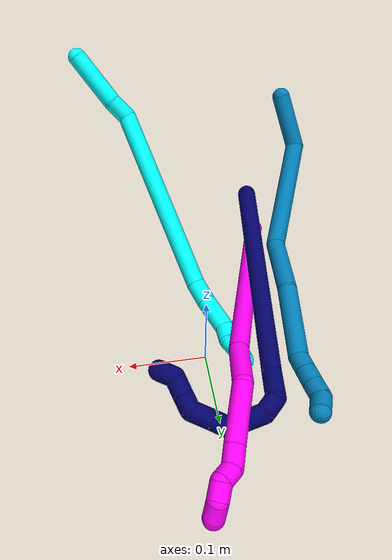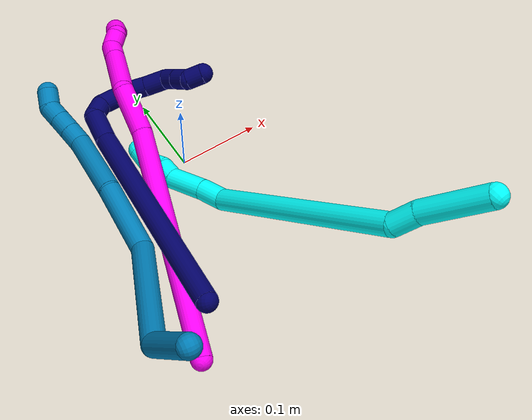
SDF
<sdf version="1.7">
 <world name="default">
  <model name="3">
   <static>0</static>
   <link name="3">
    <collision name="collision-cylinder-e_1_1_4">
     <pose>-0.009024 0.029977 -0.022541 -2.21555 -0.236115 0.466527</pose>
     <geometry><cylinder><radius>0.0125</radius><length>0.077154</length></cylinder></geometry>
     <surface>
      <friction><ode><mu>1.16</mu><mu2>1.16</mu2><slip1>0</slip1><slip2>0</slip2></ode></friction>
      <contact><ode><kp>1e+06</kp><kd>1</kd><max_vel>0</max_vel><min_depth>0.001</min_depth></ode></contact>
     </surface>
    </collision>
    <visual name="visual-cylinder-e_1_1_4">
     <pose>-0.009024 0.029977 -0.022541 -2.21555 -0.236115 0.466527</pose>
     <geometry><cylinder><radius>0.0125</radius><length>0.077154</length></cylinder></geometry>
     <material><ambient>0.003922 1 0.996078 1</ambient></material>
    </visual>
    <collision name="collision-cylinder-e_2_4_5">
     <pose>-0.020684 0.073328 -0.051257 -2.00331 -0.177026 0.275671</pose>
     <geometry><cylinder><radius>0.0125</radius><length>0.029928</length></cylinder></geometry>
     <surface>
      <friction><ode><mu>1.16</mu><mu2>1.16</mu2><slip1>0</slip1><slip2>0</slip2></ode></friction>
      <contact><ode><kp>1e+06</kp><kd>1</kd><max_vel>0</max_vel><min_depth>0.001</min_depth></ode></contact>
     </surface>
    </collision>
    <visual name="visual-cylinder-e_2_4_5">
     <pose>-0.020684 0.073328 -0.051257 -2.00331 -0.177026 0.275671</pose>
     <geometry><cylinder><radius>0.0125</radius><length>0.029928</length></cylinder></geometry>
     <material><ambient>0.003922 1 0.996078 1</ambient></material>
    </visual>
    <collision name="collision-cylinder-e_3_5_6">
     <pose>-0.074575 0.154501 -0.153509 -2.52707 -0.411057 1.16256</pose>
     <geometry><cylinder><radius>0.0125</radius><length>0.256552</length></cylinder></geometry>
     <surface>
      <friction><ode><mu>1.16</mu><mu2>1.16</mu2><slip1>0</slip1><slip2>0</slip2></ode></friction>
      <contact><ode><kp>1e+06</kp><kd>1</kd><max_vel>0</max_vel><min_depth>0.001</min_depth></ode></contact>
     </surface>
    </collision>
    <visual name="visual-cylinder-e_3_5_6">
     <pose>-0.074575 0.154501 -0.153509 -2.52707 -0.411057 1.16256</pose>
     <geometry><cylinder><radius>0.0125</radius><length>0.256552</length></cylinder></geometry>
     <material><ambient>0.003922 1 0.996078 1</ambient></material>
    </visual>
    <collision name="collision-cylinder-e_4_6_7">
     <pose>-0.127441 0.227473 -0.264058 -2.79826 -0.104329 0.585034</pose>
     <geometry><cylinder><radius>0.0125</radius><length>0.030905</length></cylinder></geometry>
     <surface>
      <friction><ode><mu>1.16</mu><mu2>1.16</mu2><slip1>0</slip1><slip2>0</slip2></ode></friction>
      <contact><ode><kp>1e+06</kp><kd>1</kd><max_vel>0</max_vel><min_depth>0.001</min_depth></ode></contact>
     </surface>
    </collision>
    <visual name="visual-cylinder-e_4_6_7">
     <pose>-0.127441 0.227473 -0.264058 -2.79826 -0.104329 0.585034</pose>
     <geometry><cylinder><radius>0.0125</radius><length>0.030905</length></cylinder></geometry>
     <material><ambient>0.003922 1 0.996078 1</ambient></material>
    </visual>
    <collision name="collision-cylinder-e_5_7_8">
     <pose>-0.130456 0.241775 -0.298811 -2.71868 -0.063111 0.292003</pose>
     <geometry><cylinder><radius>0.0125</radius><length>0.044572</length></cylinder></geometry>
     <surface>
      <friction><ode><mu>1.16</mu><mu2>1.16</mu2><slip1>0</slip1><slip2>0</slip2></ode></friction>
      <contact><ode><kp>1e+06</kp><kd>1</kd><max_vel>0</max_vel><min_depth>0.001</min_depth></ode></contact>
     </surface>
    </collision>
    <visual name="visual-cylinder-e_5_7_8">
     <pose>-0.130456 0.241775 -0.298811 -2.71868 -0.063111 0.292003</pose>
     <geometry><cylinder><radius>0.0125</radius><length>0.044572</length></cylinder></geometry>
     <material><ambient>0.003922 1 0.996078 1</ambient></material>
    </visual>
    <collision name="collision-cylinder-e_6_8_9">
     <pose>-0.133356 0.251266 -0.329406 -3.10642 -0.143837 2.66273</pose>
     <geometry><cylinder><radius>0.0125</radius><length>0.020854</length></cylinder></geometry>
     <surface>
      <friction><ode><mu>1.16</mu><mu2>1.16</mu2><slip1>0</slip1><slip2>0</slip2></ode></friction>
      <contact><ode><kp>1e+06</kp><kd>1</kd><max_vel>0</max_vel><min_depth>0.001</min_depth></ode></contact>
     </surface>
    </collision>
    <visual name="visual-cylinder-e_6_8_9">
     <pose>-0.133356 0.251266 -0.329406 -3.10642 -0.143837 2.66273</pose>
     <geometry><cylinder><radius>0.0125</radius><length>0.020854</length></cylinder></geometry>
     <material><ambient>0.003922 1 0.996078 1</ambient></material>
    </visual>
    <collision name="collision-cylinder-e_7_9_10">
     <pose>-0.13404 0.255918 -0.348727 -2.69724 0.08103 -0.355104</pose>
     <geometry><cylinder><radius>0.0125</radius><length>0.02002</length></cylinder></geometry>
     <surface>
      <friction><ode><mu>1.16</mu><mu2>1.16</mu2><slip1>0</slip1><slip2>0</slip2></ode></friction>
      <contact><ode><kp>1e+06</kp><kd>1</kd><max_vel>0</max_vel><min_depth>0.001</min_depth></ode></contact>
     </surface>
    </collision>
    <visual name="visual-cylinder-e_7_9_10">
     <pose>-0.13404 0.255918 -0.348727 -2.69724 0.08103 -0.355104</pose>
     <geometry><cylinder><radius>0.0125</radius><length>0.02002</length></cylinder></geometry>
     <material><ambient>0.003922 1 0.996078 1</ambient></material>
    </visual>
    <collision name="collision-cylinder-e_8_10_2">
     <pose>-0.131911 0.258833 -0.36756 3.00263 0.132206 1.52084</pose>
     <geometry><cylinder><radius>0.0125</radius><length>0.020015</length></cylinder></geometry>
     <surface>
      <friction><ode><mu>1.16</mu><mu2>1.16</mu2><slip1>0</slip1><slip2>0</slip2></ode></friction>
      <contact><ode><kp>1e+06</kp><kd>1</kd><max_vel>0</max_vel><min_depth>0.001</min_depth></ode></contact>
     </surface>
    </collision>
    <visual name="visual-cylinder-e_8_10_2">
     <pose>-0.131911 0.258833 -0.36756 3.00263 0.132206 1.52084</pose>
     <geometry><cylinder><radius>0.0125</radius><length>0.020015</length></cylinder></geometry>
     <material><ambient>0.003922 1 0.996078 1</ambient></material>
    </visual>
    <collision name="collision-sphere-2">
     <pose>-0.130592 0.257458 -0.377384 0 -0 0</pose>
     <geometry><sphere><radius>0.0125</radius></sphere></geometry>
     <surface>
      <friction><ode><mu>1.16</mu><mu2>1.16</mu2><slip1>0</slip1><slip2>0</slip2></ode></friction>
      <contact><ode><kp>1e+06</kp><kd>1</kd><max_vel>0</max_vel><min_depth>0.001</min_depth></ode></contact>
     </surface>
    </collision>
    <visual name="visual-sphere-2">
     <pose>-0.130592 0.257458 -0.377384 0 -0 0</pose>
     <geometry><sphere><radius>0.0125</radius></sphere></geometry>
     <material><ambient>0.003922 1 0.996078 1</ambient></material>
    </visual>
    <collision name="collision-sphere-10">
     <pose>-0.13323 0.260207 -0.357735 0 -0 0</pose>
     <geometry><sphere><radius>0.0125</radius></sphere></geometry>
     <surface>
      <friction><ode><mu>1.16</mu><mu2>1.16</mu2><slip1>0</slip1><slip2>0</slip2></ode></friction>
      <contact><ode><kp>1e+06</kp><kd>1</kd><max_vel>0</max_vel><min_depth>0.001</min_depth></ode></contact>
     </surface>
    </collision>
    <visual name="visual-sphere-10">
     <pose>-0.13323 0.260207 -0.357735 0 -0 0</pose>
     <geometry><sphere><radius>0.0125</radius></sphere></geometry>
     <material><ambient>0.003922 1 0.996078 1</ambient></material>
    </visual>
    <collision name="collision-sphere-9">
     <pose>-0.13485 0.251629 -0.339719 0 -0 0</pose>
     <geometry><sphere><radius>0.0125</radius></sphere></geometry>
     <surface>
      <friction><ode><mu>1.16</mu><mu2>1.16</mu2><slip1>0</slip1><slip2>0</slip2></ode></friction>
      <contact><ode><kp>1e+06</kp><kd>1</kd><max_vel>0</max_vel><min_depth>0.001</min_depth></ode></contact>
     </surface>
    </collision>
    <visual name="visual-sphere-9">
     <pose>-0.13485 0.251629 -0.339719 0 -0 0</pose>
     <geometry><sphere><radius>0.0125</radius></sphere></geometry>
     <material><ambient>0.003922 1 0.996078 1</ambient></material>
    </visual>
    <collision name="collision-sphere-4">
     <pose>-0.018048 0.059954 -0.045083 0 -0 0</pose>
     <geometry><sphere><radius>0.0125</radius></sphere></geometry>
     <surface>
      <friction><ode><mu>1.16</mu><mu2>1.16</mu2><slip1>0</slip1><slip2>0</slip2></ode></friction>
      <contact><ode><kp>1e+06</kp><kd>1</kd><max_vel>0</max_vel><min_depth>0.001</min_depth></ode></contact>
     </surface>
    </collision>
    <visual name="visual-sphere-4">
     <pose>-0.018048 0.059954 -0.045083 0 -0 0</pose>
     <geometry><sphere><radius>0.0125</radius></sphere></geometry>
     <material><ambient>0.003922 1 0.996078 1</ambient></material>
    </visual>
    <collision name="collision-sphere-1">
     <geometry><sphere><radius>0.0125</radius></sphere></geometry>
     <surface>
      <friction><ode><mu>1.16</mu><mu2>1.16</mu2><slip1>0</slip1><slip2>0</slip2></ode></friction>
      <contact><ode><kp>1e+06</kp><kd>1</kd><max_vel>0</max_vel><min_depth>0.001</min_depth></ode></contact>
     </surface>
    </collision>
    <visual name="visual-sphere-1">
     <geometry><sphere><radius>0.0125</radius></sphere></geometry>
     <material><ambient>0.003922 1 0.996078 1</ambient></material>
    </visual>
    <collision name="collision-sphere-8">
     <pose>-0.131861 0.250903 -0.319093 0 -0 0</pose>
     <geometry><sphere><radius>0.0125</radius></sphere></geometry>
     <surface>
      <friction><ode><mu>1.16</mu><mu2>1.16</mu2><slip1>0</slip1><slip2>0</slip2></ode></friction>
      <contact><ode><kp>1e+06</kp><kd>1</kd><max_vel>0</max_vel><min_depth>0.001</min_depth></ode></contact>
     </surface>
    </collision>
    <visual name="visual-sphere-8">
     <pose>-0.131861 0.250903 -0.319093 0 -0 0</pose>
     <geometry><sphere><radius>0.0125</radius></sphere></geometry>
     <material><ambient>0.003922 1 0.996078 1</ambient></material>
    </visual>
    <collision name="collision-sphere-5">
     <pose>-0.023319 0.086702 -0.057431 0 -0 0</pose>
     <geometry><sphere><radius>0.0125</radius></sphere></geometry>
     <surface>
      <friction><ode><mu>1.16</mu><mu2>1.16</mu2><slip1>0</slip1><slip2>0</slip2></ode></friction>
      <contact><ode><kp>1e+06</kp><kd>1</kd><max_vel>0</max_vel><min_depth>0.001</min_depth></ode></contact>
     </surface>
    </collision>
    <visual name="visual-sphere-5">
     <pose>-0.023319 0.086702 -0.057431 0 -0 0</pose>
     <geometry><sphere><radius>0.0125</radius></sphere></geometry>
     <material><ambient>0.003922 1 0.996078 1</ambient></material>
    </visual>
    <collision name="collision-sphere-6">
     <pose>-0.125832 0.2223 -0.249586 0 -0 0</pose>
     <geometry><sphere><radius>0.0125</radius></sphere></geometry>
     <surface>
      <friction><ode><mu>1.16</mu><mu2>1.16</mu2><slip1>0</slip1><slip2>0</slip2></ode></friction>
      <contact><ode><kp>1e+06</kp><kd>1</kd><max_vel>0</max_vel><min_depth>0.001</min_depth></ode></contact>
     </surface>
    </collision>
    <visual name="visual-sphere-6">
     <pose>-0.125832 0.2223 -0.249586 0 -0 0</pose>
     <geometry><sphere><radius>0.0125</radius></sphere></geometry>
     <material><ambient>0.003922 1 0.996078 1</ambient></material>
    </visual>
    <collision name="collision-sphere-7">
     <pose>-0.12905 0.232647 -0.278529 0 -0 0</pose>
     <geometry><sphere><radius>0.0125</radius></sphere></geometry>
     <surface>
      <friction><ode><mu>1.16</mu><mu2>1.16</mu2><slip1>0</slip1><slip2>0</slip2></ode></friction>
      <contact><ode><kp>1e+06</kp><kd>1</kd><max_vel>0</max_vel><min_depth>0.001</min_depth></ode></contact>
     </surface>
    </collision>
    <visual name="visual-sphere-7">
     <pose>-0.12905 0.232647 -0.278529 0 -0 0</pose>
     <geometry><sphere><radius>0.0125</radius></sphere></geometry>
     <material><ambient>0.003922 1 0.996078 1</ambient></material>
    </visual>
    <inertial>
     <pose>-0.076611 0.15499 -0.170686 0 -0 0</pose>
     <mass>0.5</mass>
     <inertia>
      <ixx>0.001774</ixx>
      <ixy>0</ixy>
      <ixz>0</ixz>
      <iyy>0.001047</iyy>
      <iyz>0</iyz>
      <izz>-0.000242</izz>
     </inertia>
    </inertial>
   </link>
   <pose>0.12632 -0.338661 0.269359 -1.64197 -0.896697 -2.95557</pose>
  </model>
  <model name="7">
   <static>0</static>
   <link name="7">
    <collision name="collision-cylinder-e_1_1_4">
     <pose>0.059594 0.075872 -0.103611 -2.50953 0.434481 -1.18752</pose>
     <geometry><cylinder><radius>0.0125</radius><length>0.283148</length></cylinder></geometry>
     <surface>
      <friction><ode><mu>1.16</mu><mu2>1.16</mu2><slip1>0</slip1><slip2>0</slip2></ode></friction>
      <contact><ode><kp>1e+06</kp><kd>1</kd><max_vel>0</max_vel><min_depth>0.001</min_depth></ode></contact>
     </surface>
    </collision>
    <visual name="visual-cylinder-e_1_1_4">
     <pose>0.059594 0.075872 -0.103611 -2.50953 0.434481 -1.18752</pose>
     <geometry><cylinder><radius>0.0125</radius><length>0.283148</length></cylinder></geometry>
     <material><ambient>0.003922 0 0.403922 1</ambient></material>
    </visual>
    <collision name="collision-cylinder-e_2_4_5">
     <pose>0.125773 0.166264 -0.218181 -2.21736 0.347314 -0.677255</pose>
     <geometry><cylinder><radius>0.0125</radius><length>0.038694</length></cylinder></geometry>
     <surface>
      <friction><ode><mu>1.16</mu><mu2>1.16</mu2><slip1>0</slip1><slip2>0</slip2></ode></friction>
      <contact><ode><kp>1e+06</kp><kd>1</kd><max_vel>0</max_vel><min_depth>0.001</min_depth></ode></contact>
     </surface>
    </collision>
    <visual name="visual-cylinder-e_2_4_5">
     <pose>0.125773 0.166264 -0.218181 -2.21736 0.347314 -0.677255</pose>
     <geometry><cylinder><radius>0.0125</radius><length>0.038694</length></cylinder></geometry>
     <material><ambient>0.003922 0 0.403922 1</ambient></material>
    </visual>
    <collision name="collision-cylinder-e_3_5_6">
     <pose>0.142628 0.184984 -0.231877 -2.14836 1.11673 -1.71244</pose>
     <geometry><cylinder><radius>0.0125</radius><length>0.022855</length></cylinder></geometry>
     <surface>
      <friction><ode><mu>1.16</mu><mu2>1.16</mu2><slip1>0</slip1><slip2>0</slip2></ode></friction>
      <contact><ode><kp>1e+06</kp><kd>1</kd><max_vel>0</max_vel><min_depth>0.001</min_depth></ode></contact>
     </surface>
    </collision>
    <visual name="visual-cylinder-e_3_5_6">
     <pose>0.142628 0.184984 -0.231877 -2.14836 1.11673 -1.71244</pose>
     <geometry><cylinder><radius>0.0125</radius><length>0.022855</length></cylinder></geometry>
     <material><ambient>0.003922 0 0.403922 1</ambient></material>
    </visual>
    <collision name="collision-cylinder-e_4_6_7">
     <pose>0.174789 0.19097 -0.229047 -0.310661 1.3098 -0.239364</pose>
     <geometry><cylinder><radius>0.0125</radius><length>0.045316</length></cylinder></geometry>
     <surface>
      <friction><ode><mu>1.16</mu><mu2>1.16</mu2><slip1>0</slip1><slip2>0</slip2></ode></friction>
      <contact><ode><kp>1e+06</kp><kd>1</kd><max_vel>0</max_vel><min_depth>0.001</min_depth></ode></contact>
     </surface>
    </collision>
    <visual name="visual-cylinder-e_4_6_7">
     <pose>0.174789 0.19097 -0.229047 -0.310661 1.3098 -0.239364</pose>
     <geometry><cylinder><radius>0.0125</radius><length>0.045316</length></cylinder></geometry>
     <material><ambient>0.003922 0 0.403922 1</ambient></material>
    </visual>
    <collision name="collision-cylinder-e_5_7_8">
     <pose>0.202248 0.192857 -0.214316 -0.010879 0.546022 -0.003046</pose>
     <geometry><cylinder><radius>0.0125</radius><length>0.021447</length></cylinder></geometry>
     <surface>
      <friction><ode><mu>1.16</mu><mu2>1.16</mu2><slip1>0</slip1><slip2>0</slip2></ode></friction>
      <contact><ode><kp>1e+06</kp><kd>1</kd><max_vel>0</max_vel><min_depth>0.001</min_depth></ode></contact>
     </surface>
    </collision>
    <visual name="visual-cylinder-e_5_7_8">
     <pose>0.202248 0.192857 -0.214316 -0.010879 0.546022 -0.003046</pose>
     <geometry><cylinder><radius>0.0125</radius><length>0.021447</length></cylinder></geometry>
     <material><ambient>0.003922 0 0.403922 1</ambient></material>
    </visual>
    <collision name="collision-cylinder-e_6_8_9">
     <pose>0.214851 0.193824 -0.193864 -0.076654 0.555953 -0.021884</pose>
     <geometry><cylinder><radius>0.0125</radius><length>0.026657</length></cylinder></geometry>
     <surface>
      <friction><ode><mu>1.16</mu><mu2>1.16</mu2><slip1>0</slip1><slip2>0</slip2></ode></friction>
      <contact><ode><kp>1e+06</kp><kd>1</kd><max_vel>0</max_vel><min_depth>0.001</min_depth></ode></contact>
     </surface>
    </collision>
    <visual name="visual-cylinder-e_6_8_9">
     <pose>0.214851 0.193824 -0.193864 -0.076654 0.555953 -0.021884</pose>
     <geometry><cylinder><radius>0.0125</radius><length>0.026657</length></cylinder></geometry>
     <material><ambient>0.003922 0 0.403922 1</ambient></material>
    </visual>
    <collision name="collision-cylinder-e_7_9_10">
     <pose>0.220474 0.193655 -0.172241 0.099901 -0.134983 -0.006758</pose>
     <geometry><cylinder><radius>0.0125</radius><length>0.020965</length></cylinder></geometry>
     <surface>
      <friction><ode><mu>1.16</mu><mu2>1.16</mu2><slip1>0</slip1><slip2>0</slip2></ode></friction>
      <contact><ode><kp>1e+06</kp><kd>1</kd><max_vel>0</max_vel><min_depth>0.001</min_depth></ode></contact>
     </surface>
    </collision>
    <visual name="visual-cylinder-e_7_9_10">
     <pose>0.220474 0.193655 -0.172241 0.099901 -0.134983 -0.006758</pose>
     <geometry><cylinder><radius>0.0125</radius><length>0.020965</length></cylinder></geometry>
     <material><ambient>0.003922 0 0.403922 1</ambient></material>
    </visual>
    <collision name="collision-cylinder-e_8_10_11">
     <pose>0.217504 0.191292 -0.151651 0.128676 -0.149675 -0.009661</pose>
     <geometry><cylinder><radius>0.0125</radius><length>0.020915</length></cylinder></geometry>
     <surface>
      <friction><ode><mu>1.16</mu><mu2>1.16</mu2><slip1>0</slip1><slip2>0</slip2></ode></friction>
      <contact><ode><kp>1e+06</kp><kd>1</kd><max_vel>0</max_vel><min_depth>0.001</min_depth></ode></contact>
     </surface>
    </collision>
    <visual name="visual-cylinder-e_8_10_11">
     <pose>0.217504 0.191292 -0.151651 0.128676 -0.149675 -0.009661</pose>
     <geometry><cylinder><radius>0.0125</radius><length>0.020915</length></cylinder></geometry>
     <material><ambient>0.003922 0 0.403922 1</ambient></material>
    </visual>
    <collision name="collision-cylinder-e_9_11_2">
     <pose>0.221252 0.191031 -0.132986 -0.126106 0.559364 -0.036263</pose>
     <geometry><cylinder><radius>0.0125</radius><length>0.020003</length></cylinder></geometry>
     <surface>
      <friction><ode><mu>1.16</mu><mu2>1.16</mu2><slip1>0</slip1><slip2>0</slip2></ode></friction>
      <contact><ode><kp>1e+06</kp><kd>1</kd><max_vel>0</max_vel><min_depth>0.001</min_depth></ode></contact>
     </surface>
    </collision>
    <visual name="visual-cylinder-e_9_11_2">
     <pose>0.221252 0.191031 -0.132986 -0.126106 0.559364 -0.036263</pose>
     <geometry><cylinder><radius>0.0125</radius><length>0.020003</length></cylinder></geometry>
     <material><ambient>0.003922 0 0.403922 1</ambient></material>
    </visual>
    <collision name="collision-sphere-2">
     <pose>0.226559 0.192097 -0.124576 0 -0 0</pose>
     <geometry><sphere><radius>0.0125</radius></sphere></geometry>
     <surface>
      <friction><ode><mu>1.16</mu><mu2>1.16</mu2><slip1>0</slip1><slip2>0</slip2></ode></friction>
      <contact><ode><kp>1e+06</kp><kd>1</kd><max_vel>0</max_vel><min_depth>0.001</min_depth></ode></contact>
     </surface>
    </collision>
    <visual name="visual-sphere-2">
     <pose>0.226559 0.192097 -0.124576 0 -0 0</pose>
     <geometry><sphere><radius>0.0125</radius></sphere></geometry>
     <material><ambient>0.003922 0 0.403922 1</ambient></material>
    </visual>
    <collision name="collision-sphere-11">
     <pose>0.215945 0.189965 -0.141396 0 -0 0</pose>
     <geometry><sphere><radius>0.0125</radius></sphere></geometry>
     <surface>
      <friction><ode><mu>1.16</mu><mu2>1.16</mu2><slip1>0</slip1><slip2>0</slip2></ode></friction>
      <contact><ode><kp>1e+06</kp><kd>1</kd><max_vel>0</max_vel><min_depth>0.001</min_depth></ode></contact>
     </surface>
    </collision>
    <visual name="visual-sphere-11">
     <pose>0.215945 0.189965 -0.141396 0 -0 0</pose>
     <geometry><sphere><radius>0.0125</radius></sphere></geometry>
     <material><ambient>0.003922 0 0.403922 1</ambient></material>
    </visual>
    <collision name="collision-sphere-10">
     <pose>0.219063 0.192619 -0.161906 0 -0 0</pose>
     <geometry><sphere><radius>0.0125</radius></sphere></geometry>
     <surface>
      <friction><ode><mu>1.16</mu><mu2>1.16</mu2><slip1>0</slip1><slip2>0</slip2></ode></friction>
      <contact><ode><kp>1e+06</kp><kd>1</kd><max_vel>0</max_vel><min_depth>0.001</min_depth></ode></contact>
     </surface>
    </collision>
    <visual name="visual-sphere-10">
     <pose>0.219063 0.192619 -0.161906 0 -0 0</pose>
     <geometry><sphere><radius>0.0125</radius></sphere></geometry>
     <material><ambient>0.003922 0 0.403922 1</ambient></material>
    </visual>
    <collision name="collision-sphere-9">
     <pose>0.221885 0.194691 -0.182576 0 -0 0</pose>
     <geometry><sphere><radius>0.0125</radius></sphere></geometry>
     <surface>
      <friction><ode><mu>1.16</mu><mu2>1.16</mu2><slip1>0</slip1><slip2>0</slip2></ode></friction>
      <contact><ode><kp>1e+06</kp><kd>1</kd><max_vel>0</max_vel><min_depth>0.001</min_depth></ode></contact>
     </surface>
    </collision>
    <visual name="visual-sphere-9">
     <pose>0.221885 0.194691 -0.182576 0 -0 0</pose>
     <geometry><sphere><radius>0.0125</radius></sphere></geometry>
     <material><ambient>0.003922 0 0.403922 1</ambient></material>
    </visual>
    <collision name="collision-sphere-4">
     <pose>0.119188 0.151744 -0.207221 0 -0 0</pose>
     <geometry><sphere><radius>0.0125</radius></sphere></geometry>
     <surface>
      <friction><ode><mu>1.16</mu><mu2>1.16</mu2><slip1>0</slip1><slip2>0</slip2></ode></friction>
      <contact><ode><kp>1e+06</kp><kd>1</kd><max_vel>0</max_vel><min_depth>0.001</min_depth></ode></contact>
     </surface>
    </collision>
    <visual name="visual-sphere-4">
     <pose>0.119188 0.151744 -0.207221 0 -0 0</pose>
     <geometry><sphere><radius>0.0125</radius></sphere></geometry>
     <material><ambient>0.003922 0 0.403922 1</ambient></material>
    </visual>
    <collision name="collision-sphere-1">
     <geometry><sphere><radius>0.0125</radius></sphere></geometry>
     <surface>
      <friction><ode><mu>1.16</mu><mu2>1.16</mu2><slip1>0</slip1><slip2>0</slip2></ode></friction>
      <contact><ode><kp>1e+06</kp><kd>1</kd><max_vel>0</max_vel><min_depth>0.001</min_depth></ode></contact>
     </surface>
    </collision>
    <visual name="visual-sphere-1">
     <geometry><sphere><radius>0.0125</radius></sphere></geometry>
     <material><ambient>0.003922 0 0.403922 1</ambient></material>
    </visual>
    <collision name="collision-sphere-8">
     <pose>0.207816 0.192957 -0.205152 0 -0 0</pose>
     <geometry><sphere><radius>0.0125</radius></sphere></geometry>
     <surface>
      <friction><ode><mu>1.16</mu><mu2>1.16</mu2><slip1>0</slip1><slip2>0</slip2></ode></friction>
      <contact><ode><kp>1e+06</kp><kd>1</kd><max_vel>0</max_vel><min_depth>0.001</min_depth></ode></contact>
     </surface>
    </collision>
    <visual name="visual-sphere-8">
     <pose>0.207816 0.192957 -0.205152 0 -0 0</pose>
     <geometry><sphere><radius>0.0125</radius></sphere></geometry>
     <material><ambient>0.003922 0 0.403922 1</ambient></material>
    </visual>
    <collision name="collision-sphere-5">
     <pose>0.132359 0.180784 -0.22914 0 -0 0</pose>
     <geometry><sphere><radius>0.0125</radius></sphere></geometry>
     <surface>
      <friction><ode><mu>1.16</mu><mu2>1.16</mu2><slip1>0</slip1><slip2>0</slip2></ode></friction>
      <contact><ode><kp>1e+06</kp><kd>1</kd><max_vel>0</max_vel><min_depth>0.001</min_depth></ode></contact>
     </surface>
    </collision>
    <visual name="visual-sphere-5">
     <pose>0.132359 0.180784 -0.22914 0 -0 0</pose>
     <geometry><sphere><radius>0.0125</radius></sphere></geometry>
     <material><ambient>0.003922 0 0.403922 1</ambient></material>
    </visual>
    <collision name="collision-sphere-6">
     <pose>0.152898 0.189183 -0.234614 0 -0 0</pose>
     <geometry><sphere><radius>0.0125</radius></sphere></geometry>
     <surface>
      <friction><ode><mu>1.16</mu><mu2>1.16</mu2><slip1>0</slip1><slip2>0</slip2></ode></friction>
      <contact><ode><kp>1e+06</kp><kd>1</kd><max_vel>0</max_vel><min_depth>0.001</min_depth></ode></contact>
     </surface>
    </collision>
    <visual name="visual-sphere-6">
     <pose>0.152898 0.189183 -0.234614 0 -0 0</pose>
     <geometry><sphere><radius>0.0125</radius></sphere></geometry>
     <material><ambient>0.003922 0 0.403922 1</ambient></material>
    </visual>
    <collision name="collision-sphere-7">
     <pose>0.196679 0.192758 -0.22348 0 -0 0</pose>
     <geometry><sphere><radius>0.0125</radius></sphere></geometry>
     <surface>
      <friction><ode><mu>1.16</mu><mu2>1.16</mu2><slip1>0</slip1><slip2>0</slip2></ode></friction>
      <contact><ode><kp>1e+06</kp><kd>1</kd><max_vel>0</max_vel><min_depth>0.001</min_depth></ode></contact>
     </surface>
    </collision>
    <visual name="visual-sphere-7">
     <pose>0.196679 0.192758 -0.22348 0 -0 0</pose>
     <geometry><sphere><radius>0.0125</radius></sphere></geometry>
     <material><ambient>0.003922 0 0.403922 1</ambient></material>
    </visual>
    <inertial>
     <pose>0.113166 0.123967 -0.145331 0 -0 0</pose>
     <mass>0.5</mass>
     <inertia>
      <ixx>-0.000928</ixx>
      <ixy>0</ixy>
      <ixz>0</ixz>
      <iyy>-0.001708</iyy>
      <iyz>0</iyz>
      <izz>-0.001852</izz>
     </inertia>
    </inertial>
   </link>
   <pose>-0.097538 -0.214564 0.09674 0.863655 0.41702 0.280514</pose>
  </model>
  <model name="9">
   <static>0</static>
   <link name="9">
    <collision name="collision-cylinder-e_1_1_4">
     <pose>-0.008251 0.034835 0.00984 -1.2955 -0.224125 0.169889</pose>
     <geometry><cylinder><radius>0.0125</radius><length>0.074252</length></cylinder></geometry>
     <surface>
      <friction><ode><mu>1.16</mu><mu2>1.16</mu2><slip1>0</slip1><slip2>0</slip2></ode></friction>
      <contact><ode><kp>1e+06</kp><kd>1</kd><max_vel>0</max_vel><min_depth>0.001</min_depth></ode></contact>
     </surface>
    </collision>
    <visual name="visual-cylinder-e_1_1_4">
     <pose>-0.008251 0.034835 0.00984 -1.2955 -0.224125 0.169889</pose>
     <geometry><cylinder><radius>0.0125</radius><length>0.074252</length></cylinder></geometry>
     <material><ambient>0 0.490196 0.709804 1</ambient></material>
    </visual>
    <collision name="collision-cylinder-e_2_4_5">
     <pose>0.003209 0.144409 -0.000865 -1.83905 0.249027 -0.32551</pose>
     <geometry><cylinder><radius>0.0125</radius><length>0.159959</length></cylinder></geometry>
     <surface>
      <friction><ode><mu>1.16</mu><mu2>1.16</mu2><slip1>0</slip1><slip2>0</slip2></ode></friction>
      <contact><ode><kp>1e+06</kp><kd>1</kd><max_vel>0</max_vel><min_depth>0.001</min_depth></ode></contact>
     </surface>
    </collision>
    <visual name="visual-cylinder-e_2_4_5">
     <pose>0.003209 0.144409 -0.000865 -1.83905 0.249027 -0.32551</pose>
     <geometry><cylinder><radius>0.0125</radius><length>0.159959</length></cylinder></geometry>
     <material><ambient>0 0.490196 0.709804 1</ambient></material>
    </visual>
    <collision name="collision-cylinder-e_3_5_6">
     <pose>0.051442 0.251059 -0.019942 -1.52487 0.728853 -0.698775</pose>
     <geometry><cylinder><radius>0.0125</radius><length>0.085646</length></cylinder></geometry>
     <surface>
      <friction><ode><mu>1.16</mu><mu2>1.16</mu2><slip1>0</slip1><slip2>0</slip2></ode></friction>
      <contact><ode><kp>1e+06</kp><kd>1</kd><max_vel>0</max_vel><min_depth>0.001</min_depth></ode></contact>
     </surface>
    </collision>
    <visual name="visual-cylinder-e_3_5_6">
     <pose>0.051442 0.251059 -0.019942 -1.52487 0.728853 -0.698775</pose>
     <geometry><cylinder><radius>0.0125</radius><length>0.085646</length></cylinder></geometry>
     <material><ambient>0 0.490196 0.709804 1</ambient></material>
    </visual>
    <collision name="collision-cylinder-e_4_6_7">
     <pose>0.101386 0.325354 -0.017345 -1.54413 0.467864 -0.45598</pose>
     <geometry><cylinder><radius>0.0125</radius><length>0.095009</length></cylinder></geometry>
     <surface>
      <friction><ode><mu>1.16</mu><mu2>1.16</mu2><slip1>0</slip1><slip2>0</slip2></ode></friction>
      <contact><ode><kp>1e+06</kp><kd>1</kd><max_vel>0</max_vel><min_depth>0.001</min_depth></ode></contact>
     </surface>
    </collision>
    <visual name="visual-cylinder-e_4_6_7">
     <pose>0.101386 0.325354 -0.017345 -1.54413 0.467864 -0.45598</pose>
     <geometry><cylinder><radius>0.0125</radius><length>0.095009</length></cylinder></geometry>
     <material><ambient>0 0.490196 0.709804 1</ambient></material>
    </visual>
    <collision name="collision-cylinder-e_5_7_8">
     <pose>0.13055 0.375034 -0.013752 -1.24525 0.787971 -0.580047</pose>
     <geometry><cylinder><radius>0.0125</radius><length>0.021837</length></cylinder></geometry>
     <surface>
      <friction><ode><mu>1.16</mu><mu2>1.16</mu2><slip1>0</slip1><slip2>0</slip2></ode></friction>
      <contact><ode><kp>1e+06</kp><kd>1</kd><max_vel>0</max_vel><min_depth>0.001</min_depth></ode></contact>
     </surface>
    </collision>
    <visual name="visual-cylinder-e_5_7_8">
     <pose>0.13055 0.375034 -0.013752 -1.24525 0.787971 -0.580047</pose>
     <geometry><cylinder><radius>0.0125</radius><length>0.021837</length></cylinder></geometry>
     <material><ambient>0 0.490196 0.709804 1</ambient></material>
    </visual>
    <collision name="collision-cylinder-e_6_8_9">
     <pose>0.145688 0.38942 -0.008831 -1.23698 0.778312 -0.567865</pose>
     <geometry><cylinder><radius>0.0125</radius><length>0.021073</length></cylinder></geometry>
     <surface>
      <friction><ode><mu>1.16</mu><mu2>1.16</mu2><slip1>0</slip1><slip2>0</slip2></ode></friction>
      <contact><ode><kp>1e+06</kp><kd>1</kd><max_vel>0</max_vel><min_depth>0.001</min_depth></ode></contact>
     </surface>
    </collision>
    <visual name="visual-cylinder-e_6_8_9">
     <pose>0.145688 0.38942 -0.008831 -1.23698 0.778312 -0.567865</pose>
     <geometry><cylinder><radius>0.0125</radius><length>0.021073</length></cylinder></geometry>
     <material><ambient>0 0.490196 0.709804 1</ambient></material>
    </visual>
    <collision name="collision-cylinder-e_7_9_10">
     <pose>0.16028 0.403141 -0.00391 -1.2153 0.793719 -0.567188</pose>
     <geometry><cylinder><radius>0.0125</radius><length>0.020179</length></cylinder></geometry>
     <surface>
      <friction><ode><mu>1.16</mu><mu2>1.16</mu2><slip1>0</slip1><slip2>0</slip2></ode></friction>
      <contact><ode><kp>1e+06</kp><kd>1</kd><max_vel>0</max_vel><min_depth>0.001</min_depth></ode></contact>
     </surface>
    </collision>
    <visual name="visual-cylinder-e_7_9_10">
     <pose>0.16028 0.403141 -0.00391 -1.2153 0.793719 -0.567188</pose>
     <geometry><cylinder><radius>0.0125</radius><length>0.020179</length></cylinder></geometry>
     <material><ambient>0 0.490196 0.709804 1</ambient></material>
    </visual>
    <collision name="collision-cylinder-e_8_10_2">
     <pose>0.175813 0.416436 -0.00419 -1.96121 0.858273 -1.19862</pose>
     <geometry><cylinder><radius>0.0125</radius><length>0.022043</length></cylinder></geometry>
     <surface>
      <friction><ode><mu>1.16</mu><mu2>1.16</mu2><slip1>0</slip1><slip2>0</slip2></ode></friction>
      <contact><ode><kp>1e+06</kp><kd>1</kd><max_vel>0</max_vel><min_depth>0.001</min_depth></ode></contact>
     </surface>
    </collision>
    <visual name="visual-cylinder-e_8_10_2">
     <pose>0.175813 0.416436 -0.00419 -1.96121 0.858273 -1.19862</pose>
     <geometry><cylinder><radius>0.0125</radius><length>0.022043</length></cylinder></geometry>
     <material><ambient>0 0.490196 0.709804 1</ambient></material>
    </visual>
    <collision name="collision-sphere-2">
     <pose>0.184153 0.4231 -0.006932 0 -0 0</pose>
     <geometry><sphere><radius>0.0125</radius></sphere></geometry>
     <surface>
      <friction><ode><mu>1.16</mu><mu2>1.16</mu2><slip1>0</slip1><slip2>0</slip2></ode></friction>
      <contact><ode><kp>1e+06</kp><kd>1</kd><max_vel>0</max_vel><min_depth>0.001</min_depth></ode></contact>
     </surface>
    </collision>
    <visual name="visual-sphere-2">
     <pose>0.184153 0.4231 -0.006932 0 -0 0</pose>
     <geometry><sphere><radius>0.0125</radius></sphere></geometry>
     <material><ambient>0 0.490196 0.709804 1</ambient></material>
    </visual>
    <collision name="collision-sphere-10">
     <pose>0.167473 0.409773 -0.001447 0 -0 0</pose>
     <geometry><sphere><radius>0.0125</radius></sphere></geometry>
     <surface>
      <friction><ode><mu>1.16</mu><mu2>1.16</mu2><slip1>0</slip1><slip2>0</slip2></ode></friction>
      <contact><ode><kp>1e+06</kp><kd>1</kd><max_vel>0</max_vel><min_depth>0.001</min_depth></ode></contact>
     </surface>
    </collision>
    <visual name="visual-sphere-10">
     <pose>0.167473 0.409773 -0.001447 0 -0 0</pose>
     <geometry><sphere><radius>0.0125</radius></sphere></geometry>
     <material><ambient>0 0.490196 0.709804 1</ambient></material>
    </visual>
    <collision name="collision-sphere-9">
     <pose>0.153086 0.396509 -0.006372 0 -0 0</pose>
     <geometry><sphere><radius>0.0125</radius></sphere></geometry>
     <surface>
      <friction><ode><mu>1.16</mu><mu2>1.16</mu2><slip1>0</slip1><slip2>0</slip2></ode></friction>
      <contact><ode><kp>1e+06</kp><kd>1</kd><max_vel>0</max_vel><min_depth>0.001</min_depth></ode></contact>
     </surface>
    </collision>
    <visual name="visual-sphere-9">
     <pose>0.153086 0.396509 -0.006372 0 -0 0</pose>
     <geometry><sphere><radius>0.0125</radius></sphere></geometry>
     <material><ambient>0 0.490196 0.709804 1</ambient></material>
    </visual>
    <collision name="collision-sphere-4">
     <pose>-0.016503 0.069669 0.01968 0 -0 0</pose>
     <geometry><sphere><radius>0.0125</radius></sphere></geometry>
     <surface>
      <friction><ode><mu>1.16</mu><mu2>1.16</mu2><slip1>0</slip1><slip2>0</slip2></ode></friction>
      <contact><ode><kp>1e+06</kp><kd>1</kd><max_vel>0</max_vel><min_depth>0.001</min_depth></ode></contact>
     </surface>
    </collision>
    <visual name="visual-sphere-4">
     <pose>-0.016503 0.069669 0.01968 0 -0 0</pose>
     <geometry><sphere><radius>0.0125</radius></sphere></geometry>
     <material><ambient>0 0.490196 0.709804 1</ambient></material>
    </visual>
    <collision name="collision-sphere-1">
     <geometry><sphere><radius>0.0125</radius></sphere></geometry>
     <surface>
      <friction><ode><mu>1.16</mu><mu2>1.16</mu2><slip1>0</slip1><slip2>0</slip2></ode></friction>
      <contact><ode><kp>1e+06</kp><kd>1</kd><max_vel>0</max_vel><min_depth>0.001</min_depth></ode></contact>
     </surface>
    </collision>
    <visual name="visual-sphere-1">
     <geometry><sphere><radius>0.0125</radius></sphere></geometry>
     <material><ambient>0 0.490196 0.709804 1</ambient></material>
    </visual>
    <collision name="collision-sphere-8">
     <pose>0.138291 0.382331 -0.011289 0 -0 0</pose>
     <geometry><sphere><radius>0.0125</radius></sphere></geometry>
     <surface>
      <friction><ode><mu>1.16</mu><mu2>1.16</mu2><slip1>0</slip1><slip2>0</slip2></ode></friction>
      <contact><ode><kp>1e+06</kp><kd>1</kd><max_vel>0</max_vel><min_depth>0.001</min_depth></ode></contact>
     </surface>
    </collision>
    <visual name="visual-sphere-8">
     <pose>0.138291 0.382331 -0.011289 0 -0 0</pose>
     <geometry><sphere><radius>0.0125</radius></sphere></geometry>
     <material><ambient>0 0.490196 0.709804 1</ambient></material>
    </visual>
    <collision name="collision-sphere-5">
     <pose>0.022921 0.21915 -0.021409 0 -0 0</pose>
     <geometry><sphere><radius>0.0125</radius></sphere></geometry>
     <surface>
      <friction><ode><mu>1.16</mu><mu2>1.16</mu2><slip1>0</slip1><slip2>0</slip2></ode></friction>
      <contact><ode><kp>1e+06</kp><kd>1</kd><max_vel>0</max_vel><min_depth>0.001</min_depth></ode></contact>
     </surface>
    </collision>
    <visual name="visual-sphere-5">
     <pose>0.022921 0.21915 -0.021409 0 -0 0</pose>
     <geometry><sphere><radius>0.0125</radius></sphere></geometry>
     <material><ambient>0 0.490196 0.709804 1</ambient></material>
    </visual>
    <collision name="collision-sphere-6">
     <pose>0.079962 0.282969 -0.018476 0 -0 0</pose>
     <geometry><sphere><radius>0.0125</radius></sphere></geometry>
     <surface>
      <friction><ode><mu>1.16</mu><mu2>1.16</mu2><slip1>0</slip1><slip2>0</slip2></ode></friction>
      <contact><ode><kp>1e+06</kp><kd>1</kd><max_vel>0</max_vel><min_depth>0.001</min_depth></ode></contact>
     </surface>
    </collision>
    <visual name="visual-sphere-6">
     <pose>0.079962 0.282969 -0.018476 0 -0 0</pose>
     <geometry><sphere><radius>0.0125</radius></sphere></geometry>
     <material><ambient>0 0.490196 0.709804 1</ambient></material>
    </visual>
    <collision name="collision-sphere-7">
     <pose>0.12281 0.367738 -0.016215 0 -0 0</pose>
     <geometry><sphere><radius>0.0125</radius></sphere></geometry>
     <surface>
      <friction><ode><mu>1.16</mu><mu2>1.16</mu2><slip1>0</slip1><slip2>0</slip2></ode></friction>
      <contact><ode><kp>1e+06</kp><kd>1</kd><max_vel>0</max_vel><min_depth>0.001</min_depth></ode></contact>
     </surface>
    </collision>
    <visual name="visual-sphere-7">
     <pose>0.12281 0.367738 -0.016215 0 -0 0</pose>
     <geometry><sphere><radius>0.0125</radius></sphere></geometry>
     <material><ambient>0 0.490196 0.709804 1</ambient></material>
    </visual>
    <inertial>
     <pose>0.05394 0.223622 -0.006843 0 -0 0</pose>
     <mass>0.5</mass>
     <inertia>
      <ixx>0.000303</ixx>
      <ixy>0</ixy>
      <ixz>0</ixz>
      <iyy>-0.000131</iyy>
      <iyz>0</iyz>
      <izz>-0.000626</izz>
     </inertia>
    </inertial>
   </link>
   <pose>-0.16004 -0.291427 0.20952 -1.57797 -0.826671 1.46354</pose>
  </model>
  <model name="10">
   <static>0</static>
   <link name="10">
    <collision name="collision-cylinder-e_1_1_4">
     <pose>0.049918 0.085823 -0.100673 -2.43565 0.360818 -0.919431</pose>
     <geometry><cylinder><radius>0.0125</radius><length>0.28279</length></cylinder></geometry>
     <surface>
      <friction><ode><mu>1.16</mu><mu2>1.16</mu2><slip1>0</slip1><slip2>0</slip2></ode></friction>
      <contact><ode><kp>1e+06</kp><kd>1</kd><max_vel>0</max_vel><min_depth>0.001</min_depth></ode></contact>
     </surface>
    </collision>
    <visual name="visual-cylinder-e_1_1_4">
     <pose>0.049918 0.085823 -0.100673 -2.43565 0.360818 -0.919431</pose>
     <geometry><cylinder><radius>0.0125</radius><length>0.28279</length></cylinder></geometry>
     <material><ambient>1 0 0.964706 1</ambient></material>
    </visual>
    <collision name="collision-cylinder-e_2_4_5">
     <pose>0.109999 0.194151 -0.219338 -2.24523 0.339113 -0.684135</pose>
     <geometry><cylinder><radius>0.0125</radius><length>0.061104</length></cylinder></geometry>
     <surface>
      <friction><ode><mu>1.16</mu><mu2>1.16</mu2><slip1>0</slip1><slip2>0</slip2></ode></friction>
      <contact><ode><kp>1e+06</kp><kd>1</kd><max_vel>0</max_vel><min_depth>0.001</min_depth></ode></contact>
     </surface>
    </collision>
    <visual name="visual-cylinder-e_2_4_5">
     <pose>0.109999 0.194151 -0.219338 -2.24523 0.339113 -0.684135</pose>
     <geometry><cylinder><radius>0.0125</radius><length>0.061104</length></cylinder></geometry>
     <material><ambient>1 0 0.964706 1</ambient></material>
    </visual>
    <collision name="collision-cylinder-e_3_5_6">
     <pose>0.121022 0.231459 -0.269539 -2.71075 0.024253 -0.110731</pose>
     <geometry><cylinder><radius>0.0125</radius><length>0.070918</length></cylinder></geometry>
     <surface>
      <friction><ode><mu>1.16</mu><mu2>1.16</mu2><slip1>0</slip1><slip2>0</slip2></ode></friction>
      <contact><ode><kp>1e+06</kp><kd>1</kd><max_vel>0</max_vel><min_depth>0.001</min_depth></ode></contact>
     </surface>
    </collision>
    <visual name="visual-cylinder-e_3_5_6">
     <pose>0.121022 0.231459 -0.269539 -2.71075 0.024253 -0.110731</pose>
     <geometry><cylinder><radius>0.0125</radius><length>0.070918</length></cylinder></geometry>
     <material><ambient>1 0 0.964706 1</ambient></material>
    </visual>
    <collision name="collision-cylinder-e_4_6_7">
     <pose>0.122325 0.251859 -0.312884 -2.67596 0.035525 -0.149557</pose>
     <geometry><cylinder><radius>0.0125</radius><length>0.02494</length></cylinder></geometry>
     <surface>
      <friction><ode><mu>1.16</mu><mu2>1.16</mu2><slip1>0</slip1><slip2>0</slip2></ode></friction>
      <contact><ode><kp>1e+06</kp><kd>1</kd><max_vel>0</max_vel><min_depth>0.001</min_depth></ode></contact>
     </surface>
    </collision>
    <visual name="visual-cylinder-e_4_6_7">
     <pose>0.122325 0.251859 -0.312884 -2.67596 0.035525 -0.149557</pose>
     <geometry><cylinder><radius>0.0125</radius><length>0.02494</length></cylinder></geometry>
     <material><ambient>1 0 0.964706 1</ambient></material>
    </visual>
    <collision name="collision-cylinder-e_5_7_8">
     <pose>0.128809 0.259242 -0.331908 -2.91874 0.641482 -2.49185</pose>
     <geometry><cylinder><radius>0.0125</radius><length>0.020191</length></cylinder></geometry>
     <surface>
      <friction><ode><mu>1.16</mu><mu2>1.16</mu2><slip1>0</slip1><slip2>0</slip2></ode></friction>
      <contact><ode><kp>1e+06</kp><kd>1</kd><max_vel>0</max_vel><min_depth>0.001</min_depth></ode></contact>
     </surface>
    </collision>
    <visual name="visual-cylinder-e_5_7_8">
     <pose>0.128809 0.259242 -0.331908 -2.91874 0.641482 -2.49185</pose>
     <geometry><cylinder><radius>0.0125</radius><length>0.020191</length></cylinder></geometry>
     <material><ambient>1 0 0.964706 1</ambient></material>
    </visual>
    <collision name="collision-cylinder-e_6_8_9">
     <pose>0.133823 0.263743 -0.349386 -2.86587 -0.102592 0.708852</pose>
     <geometry><cylinder><radius>0.0125</radius><length>0.020038</length></cylinder></geometry>
     <surface>
      <friction><ode><mu>1.16</mu><mu2>1.16</mu2><slip1>0</slip1><slip2>0</slip2></ode></friction>
      <contact><ode><kp>1e+06</kp><kd>1</kd><max_vel>0</max_vel><min_depth>0.001</min_depth></ode></contact>
     </surface>
    </collision>
    <visual name="visual-cylinder-e_6_8_9">
     <pose>0.133823 0.263743 -0.349386 -2.86587 -0.102592 0.708852</pose>
     <geometry><cylinder><radius>0.0125</radius><length>0.020038</length></cylinder></geometry>
     <material><ambient>1 0 0.964706 1</ambient></material>
    </visual>
    <collision name="collision-cylinder-e_7_9_2">
     <pose>0.127799 0.264978 -0.367521 2.97038 -0.522888 -2.52087</pose>
     <geometry><cylinder><radius>0.0125</radius><length>0.020019</length></cylinder></geometry>
     <surface>
      <friction><ode><mu>1.16</mu><mu2>1.16</mu2><slip1>0</slip1><slip2>0</slip2></ode></friction>
      <contact><ode><kp>1e+06</kp><kd>1</kd><max_vel>0</max_vel><min_depth>0.001</min_depth></ode></contact>
     </surface>
    </collision>
    <visual name="visual-cylinder-e_7_9_2">
     <pose>0.127799 0.264978 -0.367521 2.97038 -0.522888 -2.52087</pose>
     <geometry><cylinder><radius>0.0125</radius><length>0.020019</length></cylinder></geometry>
     <material><ambient>1 0 0.964706 1</ambient></material>
    </visual>
    <collision name="collision-sphere-2">
     <pose>0.1228 0.263501 -0.376067 0 -0 0</pose>
     <geometry><sphere><radius>0.0125</radius></sphere></geometry>
     <surface>
      <friction><ode><mu>1.16</mu><mu2>1.16</mu2><slip1>0</slip1><slip2>0</slip2></ode></friction>
      <contact><ode><kp>1e+06</kp><kd>1</kd><max_vel>0</max_vel><min_depth>0.001</min_depth></ode></contact>
     </surface>
    </collision>
    <visual name="visual-sphere-2">
     <pose>0.1228 0.263501 -0.376067 0 -0 0</pose>
     <geometry><sphere><radius>0.0125</radius></sphere></geometry>
     <material><ambient>1 0 0.964706 1</ambient></material>
    </visual>
    <collision name="collision-sphere-9">
     <pose>0.132797 0.266456 -0.358976 0 -0 0</pose>
     <geometry><sphere><radius>0.0125</radius></sphere></geometry>
     <surface>
      <friction><ode><mu>1.16</mu><mu2>1.16</mu2><slip1>0</slip1><slip2>0</slip2></ode></friction>
      <contact><ode><kp>1e+06</kp><kd>1</kd><max_vel>0</max_vel><min_depth>0.001</min_depth></ode></contact>
     </surface>
    </collision>
    <visual name="visual-sphere-9">
     <pose>0.132797 0.266456 -0.358976 0 -0 0</pose>
     <geometry><sphere><radius>0.0125</radius></sphere></geometry>
     <material><ambient>1 0 0.964706 1</ambient></material>
    </visual>
    <collision name="collision-sphere-4">
     <pose>0.099836 0.171647 -0.201346 0 -0 0</pose>
     <geometry><sphere><radius>0.0125</radius></sphere></geometry>
     <surface>
      <friction><ode><mu>1.16</mu><mu2>1.16</mu2><slip1>0</slip1><slip2>0</slip2></ode></friction>
      <contact><ode><kp>1e+06</kp><kd>1</kd><max_vel>0</max_vel><min_depth>0.001</min_depth></ode></contact>
     </surface>
    </collision>
    <visual name="visual-sphere-4">
     <pose>0.099836 0.171647 -0.201346 0 -0 0</pose>
     <geometry><sphere><radius>0.0125</radius></sphere></geometry>
     <material><ambient>1 0 0.964706 1</ambient></material>
    </visual>
    <collision name="collision-sphere-1">
     <geometry><sphere><radius>0.0125</radius></sphere></geometry>
     <surface>
      <friction><ode><mu>1.16</mu><mu2>1.16</mu2><slip1>0</slip1><slip2>0</slip2></ode></friction>
      <contact><ode><kp>1e+06</kp><kd>1</kd><max_vel>0</max_vel><min_depth>0.001</min_depth></ode></contact>
     </surface>
    </collision>
    <visual name="visual-sphere-1">
     <geometry><sphere><radius>0.0125</radius></sphere></geometry>
     <material><ambient>1 0 0.964706 1</ambient></material>
    </visual>
    <collision name="collision-sphere-8">
     <pose>0.134849 0.26103 -0.339796 0 -0 0</pose>
     <geometry><sphere><radius>0.0125</radius></sphere></geometry>
     <surface>
      <friction><ode><mu>1.16</mu><mu2>1.16</mu2><slip1>0</slip1><slip2>0</slip2></ode></friction>
      <contact><ode><kp>1e+06</kp><kd>1</kd><max_vel>0</max_vel><min_depth>0.001</min_depth></ode></contact>
     </surface>
    </collision>
    <visual name="visual-sphere-8">
     <pose>0.134849 0.26103 -0.339796 0 -0 0</pose>
     <geometry><sphere><radius>0.0125</radius></sphere></geometry>
     <material><ambient>1 0 0.964706 1</ambient></material>
    </visual>
    <collision name="collision-sphere-5">
     <pose>0.120162 0.216654 -0.23733 0 -0 0</pose>
     <geometry><sphere><radius>0.0125</radius></sphere></geometry>
     <surface>
      <friction><ode><mu>1.16</mu><mu2>1.16</mu2><slip1>0</slip1><slip2>0</slip2></ode></friction>
      <contact><ode><kp>1e+06</kp><kd>1</kd><max_vel>0</max_vel><min_depth>0.001</min_depth></ode></contact>
     </surface>
    </collision>
    <visual name="visual-sphere-5">
     <pose>0.120162 0.216654 -0.23733 0 -0 0</pose>
     <geometry><sphere><radius>0.0125</radius></sphere></geometry>
     <material><ambient>1 0 0.964706 1</ambient></material>
    </visual>
    <collision name="collision-sphere-6">
     <pose>0.121882 0.246263 -0.301748 0 -0 0</pose>
     <geometry><sphere><radius>0.0125</radius></sphere></geometry>
     <surface>
      <friction><ode><mu>1.16</mu><mu2>1.16</mu2><slip1>0</slip1><slip2>0</slip2></ode></friction>
      <contact><ode><kp>1e+06</kp><kd>1</kd><max_vel>0</max_vel><min_depth>0.001</min_depth></ode></contact>
     </surface>
    </collision>
    <visual name="visual-sphere-6">
     <pose>0.121882 0.246263 -0.301748 0 -0 0</pose>
     <geometry><sphere><radius>0.0125</radius></sphere></geometry>
     <material><ambient>1 0 0.964706 1</ambient></material>
    </visual>
    <collision name="collision-sphere-7">
     <pose>0.122768 0.257454 -0.324019 0 -0 0</pose>
     <geometry><sphere><radius>0.0125</radius></sphere></geometry>
     <surface>
      <friction><ode><mu>1.16</mu><mu2>1.16</mu2><slip1>0</slip1><slip2>0</slip2></ode></friction>
      <contact><ode><kp>1e+06</kp><kd>1</kd><max_vel>0</max_vel><min_depth>0.001</min_depth></ode></contact>
     </surface>
    </collision>
    <visual name="visual-sphere-7">
     <pose>0.122768 0.257454 -0.324019 0 -0 0</pose>
     <geometry><sphere><radius>0.0125</radius></sphere></geometry>
     <material><ambient>1 0 0.964706 1</ambient></material>
    </visual>
    <inertial>
     <pose>0.080624 0.149306 -0.179701 0 -0 0</pose>
     <mass>0.5</mass>
     <inertia>
      <ixx>-0.000293</ixx>
      <ixy>0</ixy>
      <ixz>0</ixz>
      <iyy>-0.001973</iyy>
      <iyz>0</iyz>
      <izz>-0.001888</izz>
     </inertia>
    </inertial>
   </link>
   <pose>-0.11821 -0.234023 0.01289 0.604382 -0.909025 0.121844</pose>
  </model>
 </world>
</sdf>
